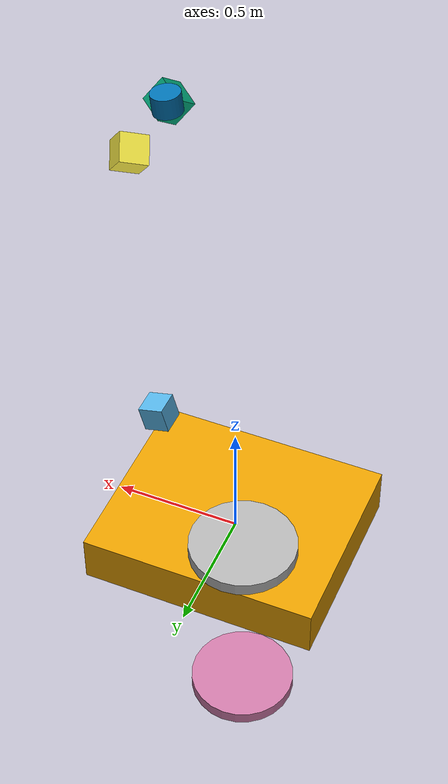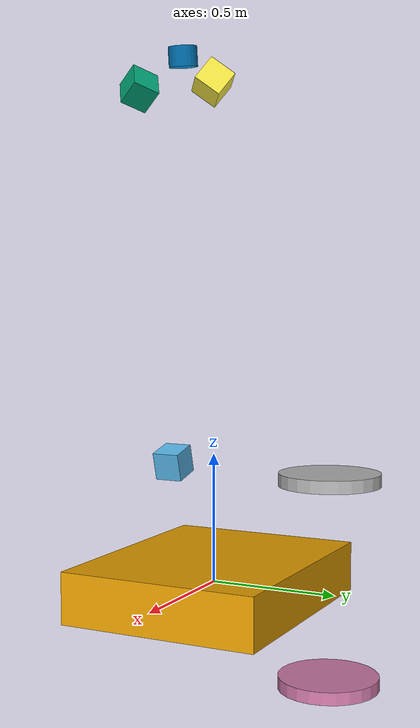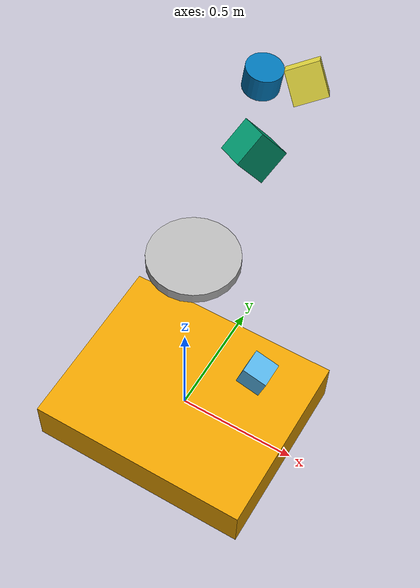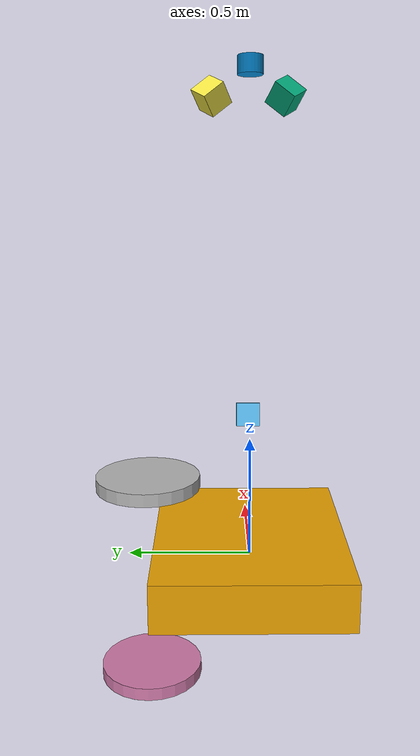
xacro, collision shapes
<?xml version="1.0"?>
<robot xmlns:xacro="http://www.ros.org/wiki/xacro" name="jimmy">
    <link name="base">
        <visual>
            <origin xyz="0 0 0" rpy="0 0 0" />
            <geometry>
                <box size =".94 .78 .198" />
                <!-- box size =".55 .78 .198" -->
            </geometry>
        </visual>

        <collision>
            <origin xyz="0 0 0" rpy="0 0 0" />
            <geometry>
                <box size =".94 .78 .198"/>
            </geometry>
        </collision>
    </link>

    <xacro:include filename="$(find gazebo_plugins)/test/multi_robot_scenario//xacro/laser/hokuyo.xacro" />
    <xacro:include filename="$(find velodyne_description)/urdf/VLP-16.urdf.xacro"/>
    <xacro:laser name="laser_vert_bottom" parent="base" xyz="0.3157894464801903 -0.002068548615034871 0.5099999434059285" rpy="3.1354753 -1.3045001 0.0024658" meshes="package://gazebo_plugins/test/multi_robot_scenario/meshes/laser" />
    <xacro:laser name="laser_vert_top_right" parent="base" xyz=".2978 -.1450 1.8451" rpy="-1.1760 .6313 -1.9377" meshes="package://gazebo_plugins/test/multi_robot_scenario/meshes/laser" />
    <xacro:laser name="laser_vert_top_left" parent="base" xyz=".2997 .1531 1.8443" rpy="1.1780 .6198 1.9560" meshes="package://gazebo_plugins/test/multi_robot_scenario/meshes/laser" />

    <VLP-16 parent="base" name="laser_horiz" topic="laser_horiz/packets" hz="10" samples="440" gpu="false">
        <origin xyz="0.2325416305773505 -0.0001380069427607134 1.920122926231907" rpy="-0.0012068 0.114646 -0.0015308" />
    </VLP-16>

    <xacro:macro name="wheel_xacro" params="suffix reflect">
        <link name="wheel_${suffix}">
            <visual>
                <origin xyz="-.1 ${reflect * .4} 0.0" rpy="-1.57079 0 0" />
                <geometry>
                    <cylinder radius=".2" length=".05"/>
                </geometry>
            </visual>

            <collision>
                <origin xyz="-.1 ${reflect * .4} 0.0" rpy="-1.57079 0 0" />
                <geometry>
                    <cylinder radius=".2" length=".05"/>
                </geometry>
            </collision>
        </link>

        <joint name="base_wheel_${suffix}_joint" type="continuous">
            <parent link="base"/>
            <child link="wheel_${suffix}"/>
            <origin xyz="-.1 .4 0.0" rpy="-1.57079 0 0" />
        </joint>
    </xacro:macro>

    <xacro:wheel_xacro suffix="left" reflect="1" />
    <xacro:wheel_xacro suffix="right" reflect="-1" />

    <link name="wheel_center">
            <visual>
                <origin xyz=".1 0 0" rpy="-1.57079 0 0" />
                <geometry>
                    <cylinder radius=".15" length=".05"/>
                </geometry>
            </visual>

            <collision>
                <origin xyz=".1 0 0" rpy="-1.57079 0 0" />
                <geometry>
                    <cylinder radius=".15" length=".05"/>
                </geometry>
            </collision>
    </link>
    <joint name="base_wheel_center_joint" type="continuous">
            <parent link="base"/>
            <child link="wheel_center"/>
            <origin xyz=".1 0.0 0.0" rpy="-1.57079 0 0" />
    </joint>
</robot>

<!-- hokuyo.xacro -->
<robot xmlns:xacro="http://www.ros.org/wiki/xacro">

<!-- Front Laser -->
<xacro:macro name="laser" params="name parent xyz rpy meshes" >

  <joint name="${parent}_${name}_joint" type="fixed">
      <axis xyz="0 0 1" />
      <origin xyz="${xyz}" rpy="${rpy}"/>
      <parent link="${parent}"/>
      <child link="${name}"/>
    </joint>

    <link name="${name}">
      <collision>
        <origin xyz="0 0 0" rpy="0 0 0"/>
        <geometry>
          <box size="0.1 0.1 0.1"/>
        </geometry>
      </collision>
      <visual>
        <origin xyz="0 0 0" rpy="0 0 0"/>
        <geometry>
          <mesh filename="${meshes}/hokuyo.dae"/>
        </geometry>
      </visual>
      <inertial>
        <mass value="1e-5" />
        <origin xyz="0 0 0" rpy="0 0 0"/>
        <inertia ixx="1e-6" ixy="0" ixz="0" iyy="1e-6" iyz="0" izz="1e-6" />
      </inertial>
    </link>

    <gazebo reference="${name}">
        <sensor name="laser" type="ray">
        <pose>0 0 0 0 0 0</pose>
          <ray>
            <scan>
              <horizontal>
                <!-- The URG-04LX-UG01  has  683 steps with 0.35139 Degree resolution -->
                <resolution>1</resolution>
                <max_angle>2.0944</max_angle> <!-- 120 Degree -->
                <min_angle>-2.0944</min_angle> <!-- -120 Degree -->
                <samples>683</samples>
              </horizontal>
            </scan>
            <range>
              <min>0.08</min>
              <max>5</max>
              <resolution>0.01</resolution>
            </range>
          </ray>

          <plugin name="laser" filename="libgazebo_ros_laser.so" >
            <robotNamespace></robotNamespace>
            <topicName>${name}/scan</topicName>
            <frameName>${name}</frameName>
          </plugin>

          <always_on>1</always_on>
          <update_rate>30</update_rate>
          <visualize>true</visualize>
        </sensor>
    </gazebo>
</xacro:macro>

</robot>

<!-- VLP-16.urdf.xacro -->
<robot xmlns:xacro="http://www.ros.org/wiki/xacro" name="VLP-16">
  <xacro:property name="M_PI" value="3.1415926535897931" />
  <xacro:macro name="VLP-16" params="*origin is_sim:=true parent:=base_link name:=velodyne tf_prefix:='' topic:=/velodyne_points organize_cloud:=false hz:=10 lasers:=16 samples:=1875 collision_range:=0.3 min_range:=0.0 max_range:=100.0 noise:=0.008 min_angle:=-${M_PI} max_angle:=${M_PI} gpu:=false">

    <joint name="${name}_base_mount_joint" type="fixed">
      <xacro:insert_block name="origin" />
      <parent link="${parent}"/>
      <child link="${name}_base_link"/>
    </joint>

    <link name="${name}_base_link">
      <inertial>
        <mass value="0.83"/>
        <origin xyz="0 0 0.03585"/>
        <inertia ixx="${(0.83 * (3.0*0.0516*0.0516 + 0.0717*0.0717)) / 12.0}" ixy="0" ixz="0"
          iyy="${(0.83 * (3.0*0.0516*0.0516 + 0.0717*0.0717)) / 12.0}" iyz="0"
          izz="${0.5 * 0.83 * (0.0516*0.0516)}"/>
      </inertial>
      <visual>
        <geometry>
          <mesh filename="package://velodyne_description/meshes/VLP16_base_1.dae" />
        </geometry>
      </visual>
      <visual>
        <geometry>
          <mesh filename="package://velodyne_description/meshes/VLP16_base_2.dae" />
        </geometry>
      </visual>
      <collision>
        <origin rpy="0 0 0" xyz="0 0 0.03585"/>
        <geometry>
          <cylinder radius="0.0516" length="0.0717"/>
        </geometry>
      </collision>
    </link>

    <joint name="${name}_base_scan_joint" type="fixed" >
      <origin xyz="0 0 0.0377" rpy="0 0 0" />
      <parent link="${name}_base_link" />
      <child link="${name}"/>
    </joint>

    <link name="${name}">
      <inertial>
        <mass value="0.01"/>
        <origin xyz="0 0 0"/>
        <inertia ixx="1e-7" ixy="0" ixz="0" iyy="1e-7" iyz="0" izz="1e-7"/>
      </inertial>
      <visual>
        <origin xyz="0 0 -0.0377" />
        <geometry>
          <mesh filename="package://velodyne_description/meshes/VLP16_scan.dae" />
        </geometry>
      </visual>
      <collision>
        <geometry>
          <sphere radius="0"/>
        </geometry>
      </collision>
    </link>

    <!-- Gazebo requires the velodyne_gazebo_plugins package -->
    <xacro:if value="${is_sim}">
        <gazebo reference="${name}">
            <xacro:if value="${gpu}">
                <sensor type="gpu_ray" name="${name}-VLP16">
                <pose>0 0 0 0 0 0</pose>
                <visualize>false</visualize>
                <update_rate>${hz}</update_rate>
                <ray>
                    <scan>
                    <horizontal>
                        <samples>${samples}</samples>
                        <resolution>1</resolution>
                        <min_angle>${min_angle}</min_angle>
                        <max_angle>${max_angle}</max_angle>
                    </horizontal>
                    <vertical>
                        <samples>${lasers}</samples>
                        <resolution>1</resolution>
                        <min_angle>-${15.0*M_PI/180.0}</min_angle>
                        <max_angle> ${15.0*M_PI/180.0}</max_angle>
                    </vertical>
                    </scan>
                    <range>
                    <min>${collision_range}</min>
                    <max>${max_range+1}</max>
                    <resolution>0.001</resolution>
                    </range>
                    <noise>
                    <type>gaussian</type>
                    <mean>0.0</mean>
                    <stddev>0.0</stddev>
                    </noise>
                </ray>
                <plugin name="gazebo_ros_laser_controller" filename="libgazebo_ros_velodyne_laser.so">
                    <ros>
                    <namespace>/${name}</namespace>
                    <remapping>~/out:=${topic}</remapping>
                    </ros>
                    <tf_prefix>${tf_prefix}</tf_prefix>
                    <frame_name>${name}</frame_name>
                    <organize_cloud>${organize_cloud}</organize_cloud>
                    <min_range>${min_range}</min_range>
                    <max_range>${max_range}</max_range>
                    <gaussian_noise>${noise}</gaussian_noise>
                </plugin>
                </sensor>
            </xacro:if>
            <xacro:unless value="${gpu}">
                <sensor type="ray" name="${name}-VLP16">
                <pose>0 0 0 0 0 0</pose>
                <visualize>false</visualize>
                <update_rate>${hz}</update_rate>
                <ray>
                    <scan>
                    <horizontal>
                        <samples>${samples}</samples>
                        <resolution>1</resolution>
                        <min_angle>${min_angle}</min_angle>
                        <max_angle>${max_angle}</max_angle>
                    </horizontal>
                    <vertical>
                        <samples>${lasers}</samples>
                        <resolution>1</resolution>
                        <min_angle>-${15.0*M_PI/180.0}</min_angle>
                        <max_angle> ${15.0*M_PI/180.0}</max_angle>
                    </vertical>
                    </scan>
                    <range>
                    <min>${collision_range}</min>
                    <max>${max_range+1}</max>
                    <resolution>0.001</resolution>
                    </range>
                    <noise>
                    <type>gaussian</type>
                    <mean>0.0</mean>
                    <stddev>0.0</stddev>
                    </noise>
                </ray>
                <plugin name="gazebo_ros_laser_controller" filename="libgazebo_ros_velodyne_laser.so">
                    <ros>
                    <namespace>/${name}</namespace>
                    <remapping>~/out:=${topic}</remapping>
                    </ros>
                    <tf_prefix>${tf_prefix}</tf_prefix>
                    <frame_name>${name}</frame_name>
                    <organize_cloud>${organize_cloud}</organize_cloud>
                    <min_range>${min_range}</min_range>
                    <max_range>${max_range}</max_range>
                    <gaussian_noise>${noise}</gaussian_noise>
                </plugin>
                </sensor>
            </xacro:unless>
        </gazebo>
    </xacro:if>

  </xacro:macro>
</robot>
